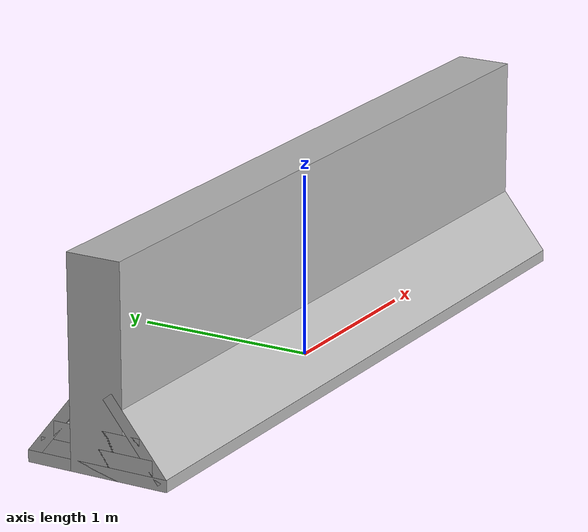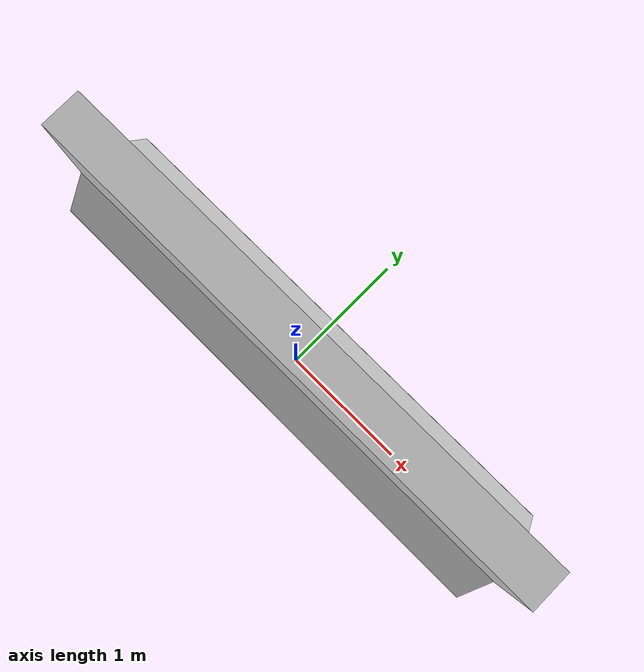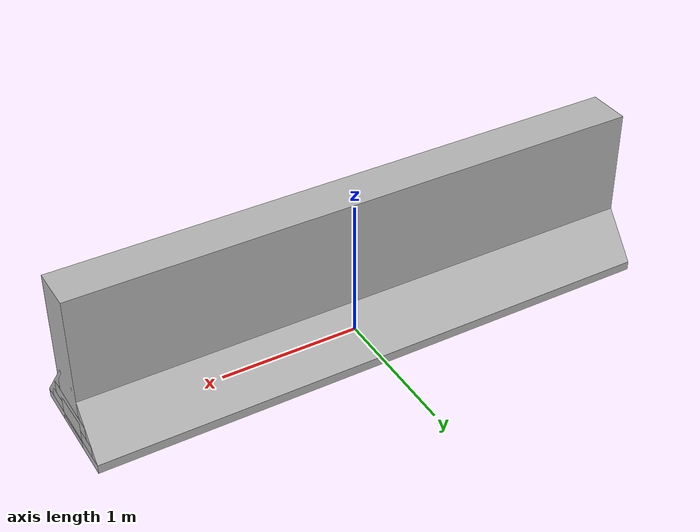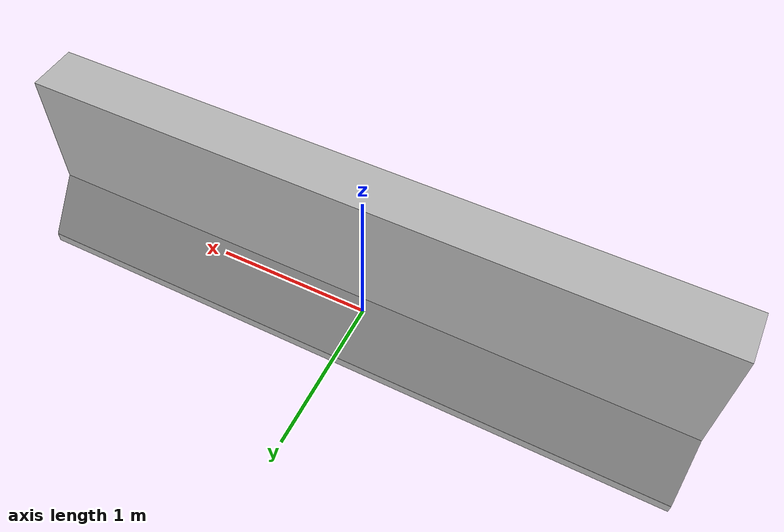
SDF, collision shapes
<?xml version="1.0" ?>
<sdf version="1.5">
    <model name="jersey_barrier">
        <static>true</static>
        <link name="link">
            <visual name="visual">
                <geometry>
                    <mesh>
                        <uri>meshes/jersey_barrier.dae</uri>
                    </mesh>
                </geometry>
            </visual>
            <collision name="upright">
                <pose>0 0 0.5715 0 0 0</pose>
                <geometry>
                    <box>
                        <size>4.06542 0.3063 1.143</size>
                    </box>
                </geometry>
            </collision>
            <collision name="base">
                <pose>0 0 0.032258 0 0 0</pose>
                <geometry>
                    <box>
                        <size>4.06542 0.8107 0.064516</size>
                    </box>
                </geometry>
            </collision>
            <collision name="base2">
                <pose>0 0 0.1 0 0 0</pose>
                <geometry>
                    <box>
                        <size>4.06542 0.65 0.1</size>
                    </box>
                </geometry>
            </collision>
            <collision name="base3">
                <pose>0 0 0.2 0 0 0</pose>
                <geometry>
                    <box>
                        <size>4.06542 0.5 0.1</size>
                    </box>
                </geometry>
            </collision>
            <collision name="left-angle">
                <pose>0 -0.224 0.2401 0.9 0 0</pose>
                <geometry>
                    <box>
                        <size>4.06542 0.5 0.064516</size>
                    </box>
                </geometry>
            </collision>
            <collision name="right-angle">
                <pose>0 0.224 0.2401 -0.9 0 0</pose>
                <geometry>
                    <box>
                        <size>4.06542 0.5 0.064516</size>
                    </box>
                </geometry>
            </collision>
        </link>
    </model>
</sdf>
